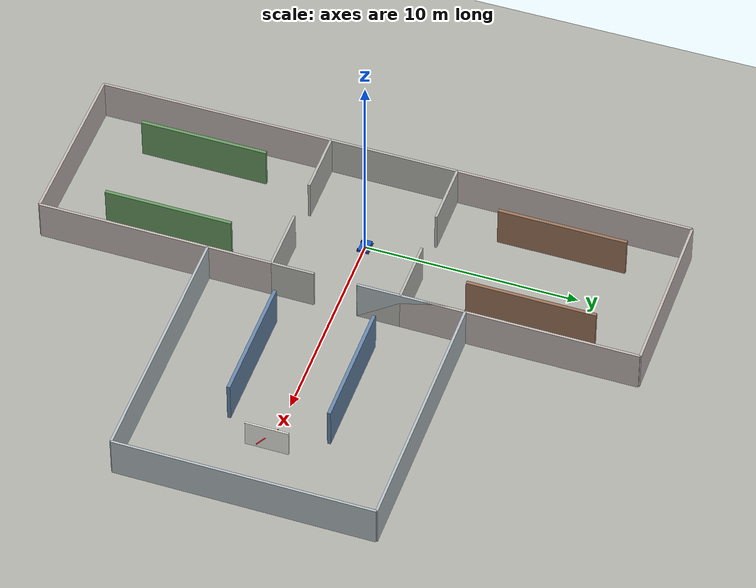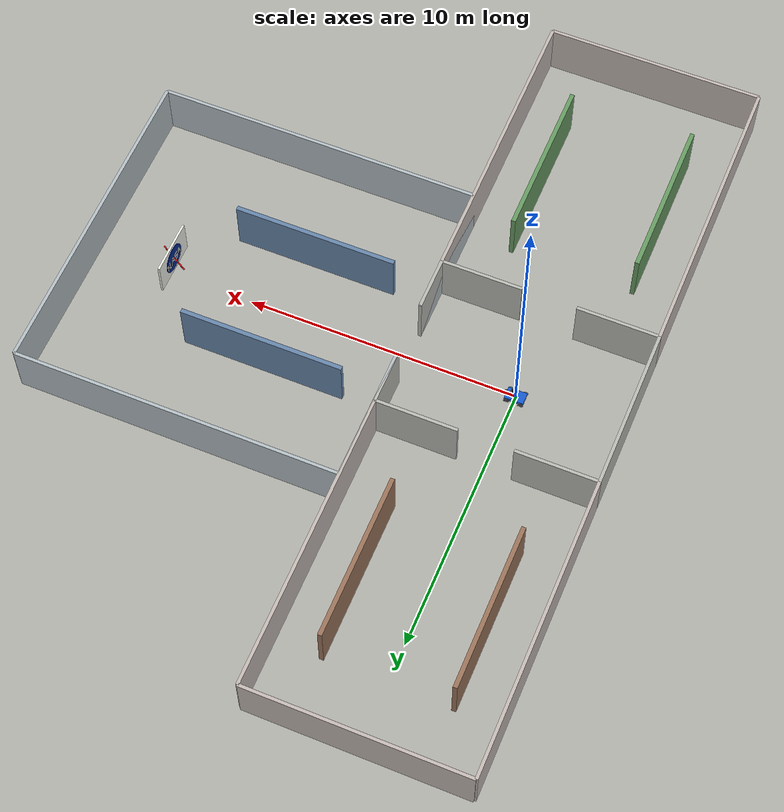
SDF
<?xml version="1.0"?>
<sdf version="1.9">
  <world name="dlio_score_ring_test">
    <plugin filename="gz-sim-physics-system" name="gz::sim::systems::Physics"/>
    <plugin filename="gz-sim-user-commands-system" name="gz::sim::systems::UserCommands"/>
    <plugin filename="gz-sim-scene-broadcaster-system" name="gz::sim::systems::SceneBroadcaster"/>
    <plugin filename="gz-sim-sensors-system" name="gz::sim::systems::Sensors">
      <render_engine>ogre2</render_engine>
    </plugin>
    <plugin filename="gz-sim-imu-system" name="gz::sim::systems::Imu"/>

    <light name="sun" type="directional">
      <pose>0 0 8 0 0 0</pose>
      <diffuse>0.85 0.85 0.85 1</diffuse>
      <specular>0.2 0.2 0.2 1</specular>
      <direction>-0.4 0.2 -1</direction>
    </light>

    <model name="ground">
      <static>true</static>
      <link name="link">
        <collision name="collision">
          <geometry>
            <plane>
              <normal>0 0 1</normal>
              <size>36 28</size>
            </plane>
          </geometry>
        </collision>
        <visual name="visual">
          <geometry>
            <plane>
              <normal>0 0 1</normal>
              <size>36 28</size>
            </plane>
          </geometry>
          <material>
            <diffuse>0.68 0.68 0.66 1</diffuse>
          </material>
        </visual>
      </link>
    </model>

    <model name="center_west_wall">
      <static>true</static>
      <pose>-4 0 1 0 0 0</pose>
      <link name="link">
        <collision name="collision"><geometry><box><size>0.12 6 2</size></box></geometry></collision>
        <visual name="visual"><geometry><box><size>0.12 6 2</size></box></geometry><material><diffuse>0.72 0.72 0.70 1</diffuse></material></visual>
      </link>
    </model>
    <model name="center_north_west_wall">
      <static>true</static>
      <pose>-2.5 3 1 0 0 0</pose>
      <link name="link">
        <collision name="collision"><geometry><box><size>3 0.12 2</size></box></geometry></collision>
        <visual name="visual"><geometry><box><size>3 0.12 2</size></box></geometry><material><diffuse>0.72 0.72 0.70 1</diffuse></material></visual>
      </link>
    </model>
    <model name="center_north_east_wall">
      <static>true</static>
      <pose>2.5 3 1 0 0 0</pose>
      <link name="link">
        <collision name="collision"><geometry><box><size>3 0.12 2</size></box></geometry></collision>
        <visual name="visual"><geometry><box><size>3 0.12 2</size></box></geometry><material><diffuse>0.72 0.72 0.70 1</diffuse></material></visual>
      </link>
    </model>
    <model name="center_south_west_wall">
      <static>true</static>
      <pose>-2.5 -3 1 0 0 0</pose>
      <link name="link">
        <collision name="collision"><geometry><box><size>3 0.12 2</size></box></geometry></collision>
        <visual name="visual"><geometry><box><size>3 0.12 2</size></box></geometry><material><diffuse>0.72 0.72 0.70 1</diffuse></material></visual>
      </link>
    </model>
    <model name="center_south_east_wall">
      <static>true</static>
      <pose>2.5 -3 1 0 0 0</pose>
      <link name="link">
        <collision name="collision"><geometry><box><size>3 0.12 2</size></box></geometry></collision>
        <visual name="visual"><geometry><box><size>3 0.12 2</size></box></geometry><material><diffuse>0.72 0.72 0.70 1</diffuse></material></visual>
      </link>
    </model>
    <model name="center_east_upper_wall">
      <static>true</static>
      <pose>4 2 1 0 0 0</pose>
      <link name="link">
        <collision name="collision"><geometry><box><size>0.12 2 2</size></box></geometry></collision>
        <visual name="visual"><geometry><box><size>0.12 2 2</size></box></geometry><material><diffuse>0.72 0.72 0.70 1</diffuse></material></visual>
      </link>
    </model>
    <model name="center_east_lower_wall">
      <static>true</static>
      <pose>4 -2 1 0 0 0</pose>
      <link name="link">
        <collision name="collision"><geometry><box><size>0.12 2 2</size></box></geometry></collision>
        <visual name="visual"><geometry><box><size>0.12 2 2</size></box></geometry><material><diffuse>0.72 0.72 0.70 1</diffuse></material></visual>
      </link>
    </model>

    <model name="east_room_north_wall">
      <static>true</static>
      <pose>10 6 1 0 0 0</pose>
      <link name="link">
        <collision name="collision"><geometry><box><size>12 0.12 2</size></box></geometry></collision>
        <visual name="visual"><geometry><box><size>12 0.12 2</size></box></geometry><material><diffuse>0.70 0.74 0.76 1</diffuse></material></visual>
      </link>
    </model>
    <model name="east_room_south_wall">
      <static>true</static>
      <pose>10 -6 1 0 0 0</pose>
      <link name="link">
        <collision name="collision"><geometry><box><size>12 0.12 2</size></box></geometry></collision>
        <visual name="visual"><geometry><box><size>12 0.12 2</size></box></geometry><material><diffuse>0.70 0.74 0.76 1</diffuse></material></visual>
      </link>
    </model>
    <model name="east_room_east_wall">
      <static>true</static>
      <pose>16 0 1 0 0 0</pose>
      <link name="link">
        <collision name="collision"><geometry><box><size>0.12 12 2</size></box></geometry></collision>
        <visual name="visual"><geometry><box><size>0.12 12 2</size></box></geometry><material><diffuse>0.70 0.74 0.76 1</diffuse></material></visual>
      </link>
    </model>
    <model name="east_room_west_upper_wall">
      <static>true</static>
      <pose>4 3.5 1 0 0 0</pose>
      <link name="link">
        <collision name="collision"><geometry><box><size>0.12 5 2</size></box></geometry></collision>
        <visual name="visual"><geometry><box><size>0.12 5 2</size></box></geometry><material><diffuse>0.70 0.74 0.76 1</diffuse></material></visual>
      </link>
    </model>
    <model name="east_room_west_lower_wall">
      <static>true</static>
      <pose>4 -3.5 1 0 0 0</pose>
      <link name="link">
        <collision name="collision"><geometry><box><size>0.12 5 2</size></box></geometry></collision>
        <visual name="visual"><geometry><box><size>0.12 5 2</size></box></geometry><material><diffuse>0.70 0.74 0.76 1</diffuse></material></visual>
      </link>
    </model>
    <model name="east_occluder_upper">
      <static>true</static>
      <pose>8.5 2.3 1 0 0 0</pose>
      <link name="link">
        <collision name="collision"><geometry><box><size>6 0.16 2</size></box></geometry></collision>
        <visual name="visual"><geometry><box><size>6 0.16 2</size></box></geometry><material><diffuse>0.40 0.52 0.66 1</diffuse></material></visual>
      </link>
    </model>
    <model name="east_occluder_lower">
      <static>true</static>
      <pose>8.5 -2.3 1 0 0 0</pose>
      <link name="link">
        <collision name="collision"><geometry><box><size>6 0.16 2</size></box></geometry></collision>
        <visual name="visual"><geometry><box><size>6 0.16 2</size></box></geometry><material><diffuse>0.40 0.52 0.66 1</diffuse></material></visual>
      </link>
    </model>

    <model name="north_room_north_wall">
      <static>true</static>
      <pose>0 14 1 0 0 0</pose>
      <link name="link">
        <collision name="collision"><geometry><box><size>8 0.12 2</size></box></geometry></collision>
        <visual name="visual"><geometry><box><size>8 0.12 2</size></box></geometry><material><diffuse>0.76 0.72 0.70 1</diffuse></material></visual>
      </link>
    </model>
    <model name="north_room_west_wall">
      <static>true</static>
      <pose>-4 8.5 1 0 0 0</pose>
      <link name="link">
        <collision name="collision"><geometry><box><size>0.12 11 2</size></box></geometry></collision>
        <visual name="visual"><geometry><box><size>0.12 11 2</size></box></geometry><material><diffuse>0.76 0.72 0.70 1</diffuse></material></visual>
      </link>
    </model>
    <model name="north_room_east_wall">
      <static>true</static>
      <pose>4 8.5 1 0 0 0</pose>
      <link name="link">
        <collision name="collision"><geometry><box><size>0.12 11 2</size></box></geometry></collision>
        <visual name="visual"><geometry><box><size>0.12 11 2</size></box></geometry><material><diffuse>0.76 0.72 0.70 1</diffuse></material></visual>
      </link>
    </model>
    <model name="north_occluder_left">
      <static>true</static>
      <pose>-2.3 8.5 1 0 0 0</pose>
      <link name="link">
        <collision name="collision"><geometry><box><size>0.16 6 2</size></box></geometry></collision>
        <visual name="visual"><geometry><box><size>0.16 6 2</size></box></geometry><material><diffuse>0.60 0.45 0.35 1</diffuse></material></visual>
      </link>
    </model>
    <model name="north_occluder_right">
      <static>true</static>
      <pose>2.3 8.5 1 0 0 0</pose>
      <link name="link">
        <collision name="collision"><geometry><box><size>0.16 6 2</size></box></geometry></collision>
        <visual name="visual"><geometry><box><size>0.16 6 2</size></box></geometry><material><diffuse>0.60 0.45 0.35 1</diffuse></material></visual>
      </link>
    </model>

    <model name="south_room_south_wall">
      <static>true</static>
      <pose>0 -14 1 0 0 0</pose>
      <link name="link">
        <collision name="collision"><geometry><box><size>8 0.12 2</size></box></geometry></collision>
        <visual name="visual"><geometry><box><size>8 0.12 2</size></box></geometry><material><diffuse>0.76 0.72 0.70 1</diffuse></material></visual>
      </link>
    </model>
    <model name="south_room_west_wall">
      <static>true</static>
      <pose>-4 -8.5 1 0 0 0</pose>
      <link name="link">
        <collision name="collision"><geometry><box><size>0.12 11 2</size></box></geometry></collision>
        <visual name="visual"><geometry><box><size>0.12 11 2</size></box></geometry><material><diffuse>0.76 0.72 0.70 1</diffuse></material></visual>
      </link>
    </model>
    <model name="south_room_east_wall">
      <static>true</static>
      <pose>4 -8.5 1 0 0 0</pose>
      <link name="link">
        <collision name="collision"><geometry><box><size>0.12 11 2</size></box></geometry></collision>
        <visual name="visual"><geometry><box><size>0.12 11 2</size></box></geometry><material><diffuse>0.76 0.72 0.70 1</diffuse></material></visual>
      </link>
    </model>
    <model name="south_occluder_left">
      <static>true</static>
      <pose>-2.3 -8.5 1 0 0 0</pose>
      <link name="link">
        <collision name="collision"><geometry><box><size>0.16 6 2</size></box></geometry></collision>
        <visual name="visual"><geometry><box><size>0.16 6 2</size></box></geometry><material><diffuse>0.40 0.60 0.38 1</diffuse></material></visual>
      </link>
    </model>
    <model name="south_occluder_right">
      <static>true</static>
      <pose>2.3 -8.5 1 0 0 0</pose>
      <link name="link">
        <collision name="collision"><geometry><box><size>0.16 6 2</size></box></geometry></collision>
        <visual name="visual"><geometry><box><size>0.16 6 2</size></box></geometry><material><diffuse>0.40 0.60 0.38 1</diffuse></material></visual>
      </link>
    </model>

    <model name="nasa_logo_target">
      <static>true</static>
      <pose>13 0 1.15 0 0 3.14159265</pose>
      <link name="link">
        <collision name="sign_collision">
          <geometry><box><size>0.10 1.8 1.2</size></box></geometry>
        </collision>
        <visual name="sign_backing">
          <geometry><box><size>0.08 2.0 1.35</size></box></geometry>
          <material><diffuse>0.93 0.93 0.90 1</diffuse></material>
        </visual>
        <visual name="blue_logo_disk">
          <pose>0.052 0 0 0 1.57079632679 0</pose>
          <geometry><cylinder><radius>0.55</radius><length>0.02</length></cylinder></geometry>
          <material><diffuse>0.02 0.16 0.55 1</diffuse></material>
        </visual>
        <visual name="red_vector">
          <pose>0.066 0 0.02 0 1.57079632679 1.04719755</pose>
          <geometry><box><size>0.025 1.25 0.045</size></box></geometry>
          <material><diffuse>0.88 0.05 0.08 1</diffuse></material>
        </visual>
        <visual name="letter_n_left"><pose>0.078 -0.48 -0.03 0 0 0</pose><geometry><box><size>0.02 0.035 0.35</size></box></geometry><material><diffuse>1 1 1 1</diffuse></material></visual>
        <visual name="letter_n_right"><pose>0.078 -0.34 -0.03 0 0 0</pose><geometry><box><size>0.02 0.035 0.35</size></box></geometry><material><diffuse>1 1 1 1</diffuse></material></visual>
        <visual name="letter_n_diag"><pose>0.08 -0.41 -0.03 0.72 0 0</pose><geometry><box><size>0.02 0.035 0.42</size></box></geometry><material><diffuse>1 1 1 1</diffuse></material></visual>
        <visual name="letter_a_left"><pose>0.078 -0.03 -0.03 0.28 0 0</pose><geometry><box><size>0.02 0.035 0.36</size></box></geometry><material><diffuse>1 1 1 1</diffuse></material></visual>
        <visual name="letter_a_right"><pose>0.078 -0.17 -0.03 -0.28 0 0</pose><geometry><box><size>0.02 0.035 0.36</size></box></geometry><material><diffuse>1 1 1 1</diffuse></material></visual>
        <visual name="letter_a_bar"><pose>0.08 -0.10 -0.02 1.57079632679 0 0</pose><geometry><box><size>0.02 0.035 0.15</size></box></geometry><material><diffuse>1 1 1 1</diffuse></material></visual>
        <visual name="letter_s_top"><pose>0.078 0.13 -0.19 1.57079632679 0 0</pose><geometry><box><size>0.02 0.035 0.18</size></box></geometry><material><diffuse>1 1 1 1</diffuse></material></visual>
        <visual name="letter_s_mid"><pose>0.078 0.13 -0.03 1.57079632679 0 0</pose><geometry><box><size>0.02 0.035 0.18</size></box></geometry><material><diffuse>1 1 1 1</diffuse></material></visual>
        <visual name="letter_s_bot"><pose>0.078 0.13 0.13 1.57079632679 0 0</pose><geometry><box><size>0.02 0.035 0.18</size></box></geometry><material><diffuse>1 1 1 1</diffuse></material></visual>
        <visual name="letter_s_left"><pose>0.078 0.05 0.05 0 0 0</pose><geometry><box><size>0.02 0.035 0.16</size></box></geometry><material><diffuse>1 1 1 1</diffuse></material></visual>
        <visual name="letter_s_right"><pose>0.078 0.21 -0.11 0 0 0</pose><geometry><box><size>0.02 0.035 0.16</size></box></geometry><material><diffuse>1 1 1 1</diffuse></material></visual>
        <visual name="letter_a2_left"><pose>0.078 0.43 -0.03 0.28 0 0</pose><geometry><box><size>0.02 0.035 0.36</size></box></geometry><material><diffuse>1 1 1 1</diffuse></material></visual>
        <visual name="letter_a2_right"><pose>0.078 0.29 -0.03 -0.28 0 0</pose><geometry><box><size>0.02 0.035 0.36</size></box></geometry><material><diffuse>1 1 1 1</diffuse></material></visual>
        <visual name="letter_a2_bar"><pose>0.08 0.36 -0.02 1.57079632679 0 0</pose><geometry><box><size>0.02 0.035 0.15</size></box></geometry><material><diffuse>1 1 1 1</diffuse></material></visual>
      </link>
    </model>

    <include>
      <uri>model://dlio_car</uri>
      <pose>0 0 0 0 0 0</pose>
    </include>
  </world>
</sdf>

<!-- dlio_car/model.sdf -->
<sdf version="1.9">
  <model name="dlio_car" xmlns:ignition="http://ignitionrobotics.org/schema">
    <pose>0 0 0.14 0 0 0</pose>
    <self_collide>false</self_collide>

    <link name="base_link">
      <inertial>
        <mass>12.0</mass>
        <inertia>
          <ixx>0.20</ixx>
          <iyy>0.35</iyy>
          <izz>0.42</izz>
          <ixy>0</ixy>
          <ixz>0</ixz>
          <iyz>0</iyz>
        </inertia>
      </inertial>
      <collision name="base_collision">
        <geometry>
          <box>
            <size>0.70 0.45 0.20</size>
          </box>
        </geometry>
      </collision>
      <visual name="base_visual">
        <geometry>
          <box>
            <size>0.70 0.45 0.20</size>
          </box>
        </geometry>
        <material>
          <diffuse>0.08 0.35 0.80 1</diffuse>
        </material>
      </visual>
    </link>

    <link name="lidar">
      <pose relative_to="base_link">0.12 0 0.33 0 0 0</pose>
      <inertial>
        <mass>0.2</mass>
        <inertia>
          <ixx>0.0004</ixx>
          <iyy>0.0004</iyy>
          <izz>0.0004</izz>
          <ixy>0</ixy>
          <ixz>0</ixz>
          <iyz>0</iyz>
        </inertia>
      </inertial>
      <visual name="lidar_visual">
        <geometry>
          <cylinder>
            <radius>0.08</radius>
            <length>0.08</length>
          </cylinder>
        </geometry>
        <material>
          <diffuse>0.05 0.05 0.05 1</diffuse>
        </material>
      </visual>
      <sensor name="lidar_sensor" type="gpu_lidar">
        <topic>/points_raw</topic>
        <update_rate>10</update_rate>
        <alwaysOn>true</alwaysOn>
        <visualize>true</visualize>
        <lidar>
          <scan>
            <horizontal>
              <samples>720</samples>
              <resolution>1</resolution>
              <min_angle>-3.14159265</min_angle>
              <max_angle>3.14159265</max_angle>
            </horizontal>
            <vertical>
              <samples>32</samples>
              <resolution>1</resolution>
              <min_angle>-0.45</min_angle>
              <max_angle>0.35</max_angle>
            </vertical>
          </scan>
          <range>
            <min>0.2</min>
            <max>18.0</max>
            <resolution>0.03</resolution>
          </range>
          <noise>
            <type>gaussian</type>
            <mean>0.0</mean>
            <stddev>0.01</stddev>
          </noise>
        </lidar>
      </sensor>
    </link>

    <link name="imu">
      <pose relative_to="base_link">0 0 0.12 0 0 0</pose>
      <inertial>
        <mass>0.05</mass>
        <inertia>
          <ixx>0.00002</ixx>
          <iyy>0.00002</iyy>
          <izz>0.00002</izz>
          <ixy>0</ixy>
          <ixz>0</ixz>
          <iyz>0</iyz>
        </inertia>
      </inertial>
      <visual name="imu_visual">
        <geometry>
          <box>
            <size>0.08 0.06 0.03</size>
          </box>
        </geometry>
        <material>
          <diffuse>0.9 0.75 0.2 1</diffuse>
        </material>
      </visual>
      <sensor name="imu_sensor" type="imu">
        <topic>/imu_raw</topic>
        <update_rate>100</update_rate>
        <always_on>true</always_on>
      </sensor>
    </link>

    <link name="wildos_front_camera">
      <pose relative_to="base_link">0.36 0 0.24 0 0 0</pose>
      <inertial>
        <mass>0.08</mass>
        <inertia>
          <ixx>0.00005</ixx>
          <iyy>0.00005</iyy>
          <izz>0.00005</izz>
          <ixy>0</ixy>
          <ixz>0</ixz>
          <iyz>0</iyz>
        </inertia>
      </inertial>
      <visual name="front_camera_visual">
        <geometry>
          <box>
            <size>0.08 0.04 0.04</size>
          </box>
        </geometry>
        <material>
          <diffuse>0.05 0.05 0.05 1</diffuse>
        </material>
      </visual>
      <sensor name="front_camera_sensor" type="camera">
        <pose>0 0 0 0 0 0</pose>
        <topic>/wildos/front/color/image_raw</topic>
        <update_rate>10</update_rate>
        <always_on>true</always_on>
        <visualize>true</visualize>
        <camera>
          <optical_frame_id>wildos_front_camera_color_optical_frame</optical_frame_id>
          <horizontal_fov>1.3962634</horizontal_fov>
          <image>
            <width>640</width>
            <height>480</height>
            <format>R8G8B8</format>
          </image>
          <clip>
            <near>0.05</near>
            <far>40.0</far>
          </clip>
        </camera>
      </sensor>
    </link>

    <link name="front_left_wheel">
      <pose relative_to="base_link">0.26 0.26 -0.04 -1.57079632679 0 0</pose>
      <inertial>
        <mass>0.45</mass>
        <inertia>
          <ixx>0.002</ixx>
          <iyy>0.002</iyy>
          <izz>0.002</izz>
          <ixy>0</ixy>
          <ixz>0</ixz>
          <iyz>0</iyz>
        </inertia>
      </inertial>
      <collision name="front_left_wheel_collision">
        <geometry>
          <cylinder>
            <radius>0.10</radius>
            <length>0.05</length>
          </cylinder>
        </geometry>
        <surface>
          <friction>
            <ode>
              <mu>1.0</mu>
              <mu2>0.0</mu2>
              <fdir1 ignition:expressed_in="base_link">1 -1 0</fdir1>
            </ode>
          </friction>
        </surface>
      </collision>
      <visual name="front_left_wheel_visual">
        <geometry>
          <cylinder>
            <radius>0.10</radius>
            <length>0.05</length>
          </cylinder>
        </geometry>
        <material>
          <diffuse>0.02 0.02 0.02 1</diffuse>
        </material>
      </visual>
    </link>

    <link name="front_right_wheel">
      <pose relative_to="base_link">0.26 -0.26 -0.04 -1.57079632679 0 0</pose>
      <inertial>
        <mass>0.45</mass>
        <inertia>
          <ixx>0.002</ixx>
          <iyy>0.002</iyy>
          <izz>0.002</izz>
          <ixy>0</ixy>
          <ixz>0</ixz>
          <iyz>0</iyz>
        </inertia>
      </inertial>
      <collision name="front_right_wheel_collision">
        <geometry>
          <cylinder>
            <radius>0.10</radius>
            <length>0.05</length>
          </cylinder>
        </geometry>
        <surface>
          <friction>
            <ode>
              <mu>1.0</mu>
              <mu2>0.0</mu2>
              <fdir1 ignition:expressed_in="base_link">1 1 0</fdir1>
            </ode>
          </friction>
        </surface>
      </collision>
      <visual name="front_right_wheel_visual">
        <geometry>
          <cylinder>
            <radius>0.10</radius>
            <length>0.05</length>
          </cylinder>
        </geometry>
        <material>
          <diffuse>0.02 0.02 0.02 1</diffuse>
        </material>
      </visual>
    </link>

    <link name="rear_left_wheel">
      <pose relative_to="base_link">-0.26 0.26 -0.04 -1.57079632679 0 0</pose>
      <inertial>
        <mass>0.45</mass>
        <inertia>
          <ixx>0.002</ixx>
          <iyy>0.002</iyy>
          <izz>0.002</izz>
          <ixy>0</ixy>
          <ixz>0</ixz>
          <iyz>0</iyz>
        </inertia>
      </inertial>
      <collision name="rear_left_wheel_collision">
        <geometry>
          <cylinder>
            <radius>0.10</radius>
            <length>0.05</length>
          </cylinder>
        </geometry>
        <surface>
          <friction>
            <ode>
              <mu>1.0</mu>
              <mu2>0.0</mu2>
              <fdir1 ignition:expressed_in="base_link">1 1 0</fdir1>
            </ode>
          </friction>
        </surface>
      </collision>
      <visual name="rear_left_wheel_visual">
        <geometry>
          <cylinder>
            <radius>0.10</radius>
            <length>0.05</length>
          </cylinder>
        </geometry>
        <material>
          <diffuse>0.02 0.02 0.02 1</diffuse>
        </material>
      </visual>
    </link>

    <link name="rear_right_wheel">
      <pose relative_to="base_link">-0.26 -0.26 -0.04 -1.57079632679 0 0</pose>
      <inertial>
        <mass>0.45</mass>
        <inertia>
          <ixx>0.002</ixx>
          <iyy>0.002</iyy>
          <izz>0.002</izz>
          <ixy>0</ixy>
          <ixz>0</ixz>
          <iyz>0</iyz>
        </inertia>
      </inertial>
      <collision name="rear_right_wheel_collision">
        <geometry>
          <cylinder>
            <radius>0.10</radius>
            <length>0.05</length>
          </cylinder>
        </geometry>
        <surface>
          <friction>
            <ode>
              <mu>1.0</mu>
              <mu2>0.0</mu2>
              <fdir1 ignition:expressed_in="base_link">1 -1 0</fdir1>
            </ode>
          </friction>
        </surface>
      </collision>
      <visual name="rear_right_wheel_visual">
        <geometry>
          <cylinder>
            <radius>0.10</radius>
            <length>0.05</length>
          </cylinder>
        </geometry>
        <material>
          <diffuse>0.02 0.02 0.02 1</diffuse>
        </material>
      </visual>
    </link>

    <joint name="lidar_joint" type="fixed">
      <parent>base_link</parent>
      <child>lidar</child>
    </joint>
    <joint name="imu_joint" type="fixed">
      <parent>base_link</parent>
      <child>imu</child>
    </joint>
    <joint name="wildos_front_camera_joint" type="fixed">
      <parent>base_link</parent>
      <child>wildos_front_camera</child>
    </joint>
    <joint name="front_left_wheel_joint" type="revolute">
      <parent>base_link</parent>
      <child>front_left_wheel</child>
      <axis>
        <xyz>0 0 1</xyz>
        <limit>
          <lower>-1.79769e+308</lower>
          <upper>1.79769e+308</upper>
        </limit>
      </axis>
    </joint>
    <joint name="front_right_wheel_joint" type="revolute">
      <parent>base_link</parent>
      <child>front_right_wheel</child>
      <axis>
        <xyz>0 0 1</xyz>
        <limit>
          <lower>-1.79769e+308</lower>
          <upper>1.79769e+308</upper>
        </limit>
      </axis>
    </joint>
    <joint name="rear_left_wheel_joint" type="revolute">
      <parent>base_link</parent>
      <child>rear_left_wheel</child>
      <axis>
        <xyz>0 0 1</xyz>
        <limit>
          <lower>-1.79769e+308</lower>
          <upper>1.79769e+308</upper>
        </limit>
      </axis>
    </joint>
    <joint name="rear_right_wheel_joint" type="revolute">
      <parent>base_link</parent>
      <child>rear_right_wheel</child>
      <axis>
        <xyz>0 0 1</xyz>
        <limit>
          <lower>-1.79769e+308</lower>
          <upper>1.79769e+308</upper>
        </limit>
      </axis>
    </joint>

    <plugin filename="ignition-gazebo-mecanum-drive-system" name="ignition::gazebo::systems::MecanumDrive">
      <front_left_joint>front_left_wheel_joint</front_left_joint>
      <front_right_joint>front_right_wheel_joint</front_right_joint>
      <back_left_joint>rear_left_wheel_joint</back_left_joint>
      <back_right_joint>rear_right_wheel_joint</back_right_joint>
      <wheel_separation>0.52</wheel_separation>
      <wheelbase>0.52</wheelbase>
      <wheel_radius>0.10</wheel_radius>
      <topic>/cmd_vel</topic>
      <min_acceleration>-5</min_acceleration>
      <max_acceleration>5</max_acceleration>
      <odom_topic>/gazebo/odom</odom_topic>
      <tf_topic>/tf</tf_topic>
      <child_frame_id>base_link</child_frame_id>
    </plugin>

    <plugin filename="gz-sim-pose-publisher-system" name="gz::sim::systems::PosePublisher">
      <publish_model_pose>true</publish_model_pose>
      <publish_link_pose>false</publish_link_pose>
      <publish_collision_pose>false</publish_collision_pose>
      <publish_visual_pose>false</publish_visual_pose>
      <publish_nested_model_pose>false</publish_nested_model_pose>
      <use_pose_vector_msg>false</use_pose_vector_msg>
      <update_frequency>50</update_frequency>
    </plugin>
  </model>
</sdf>
